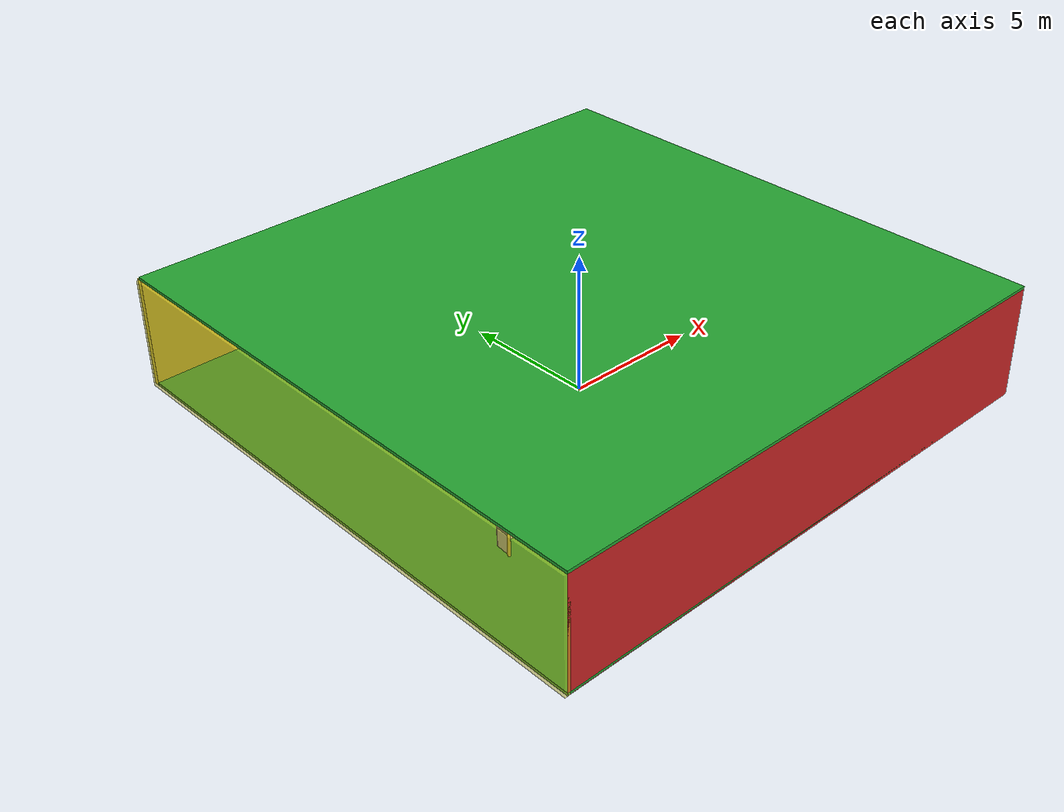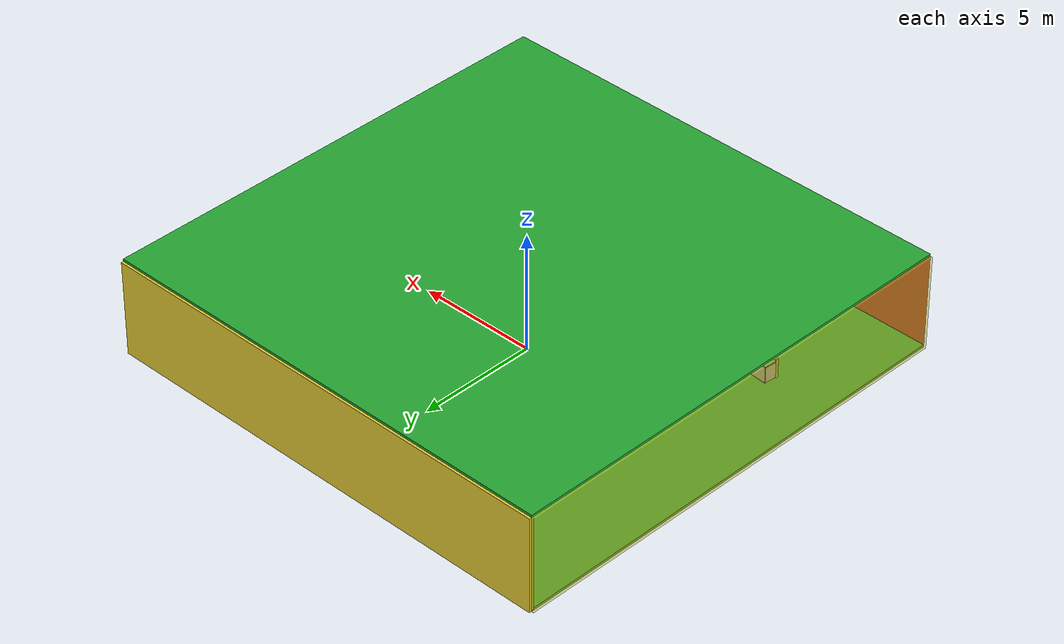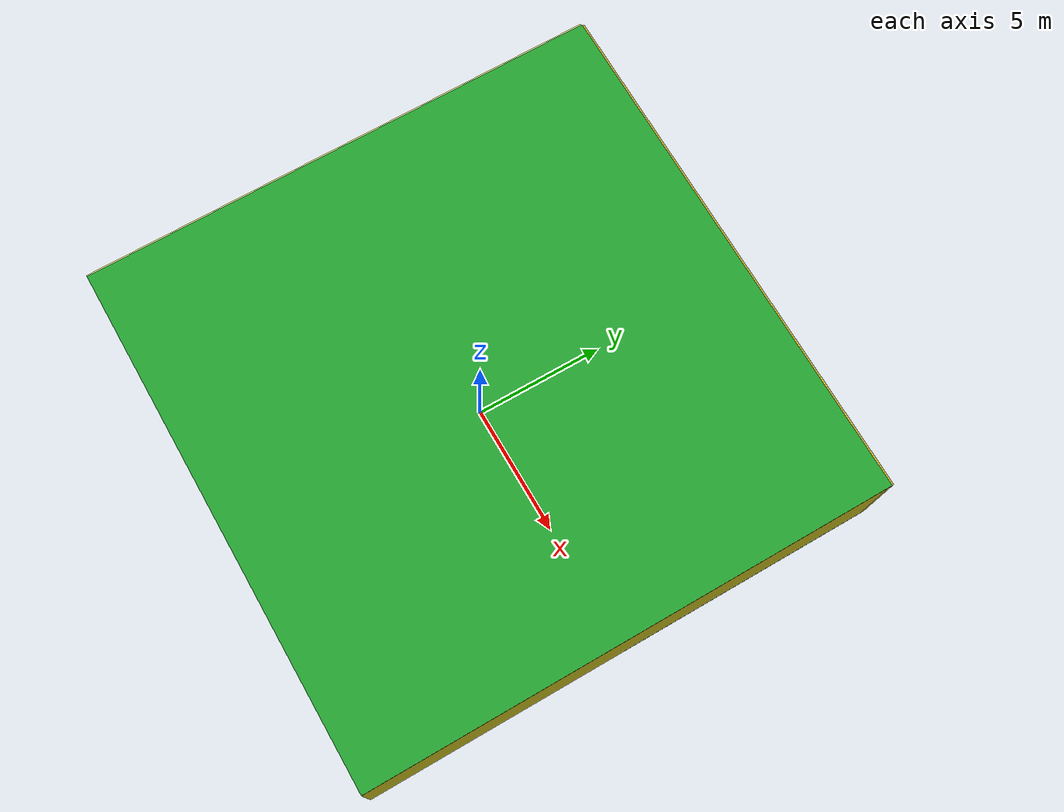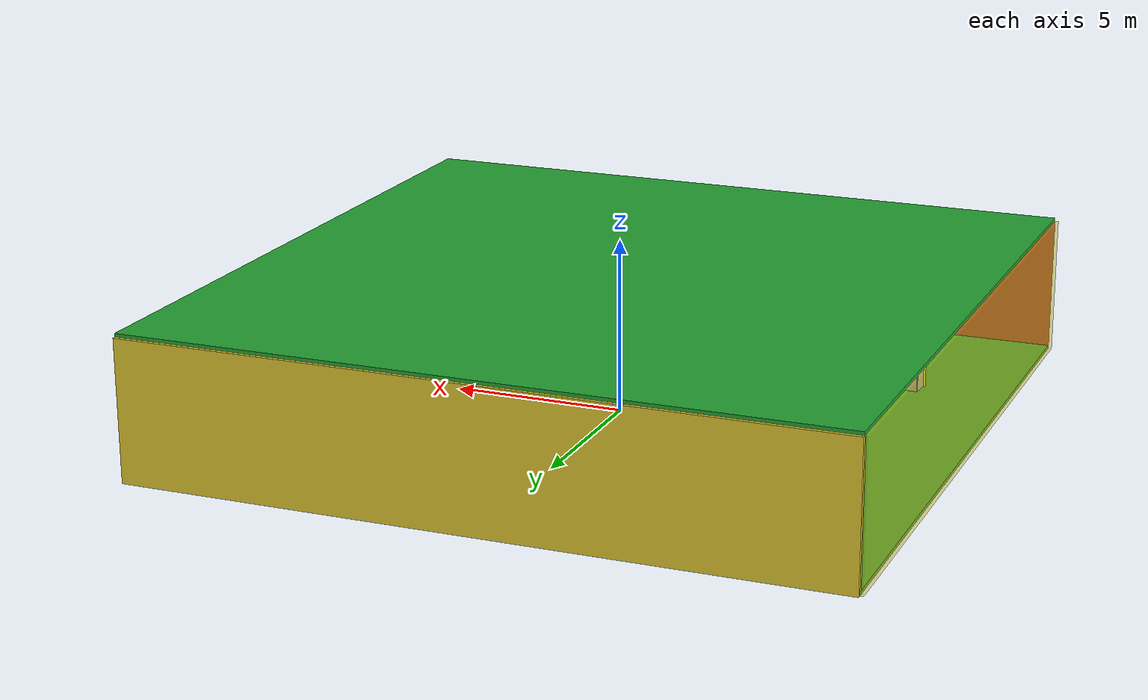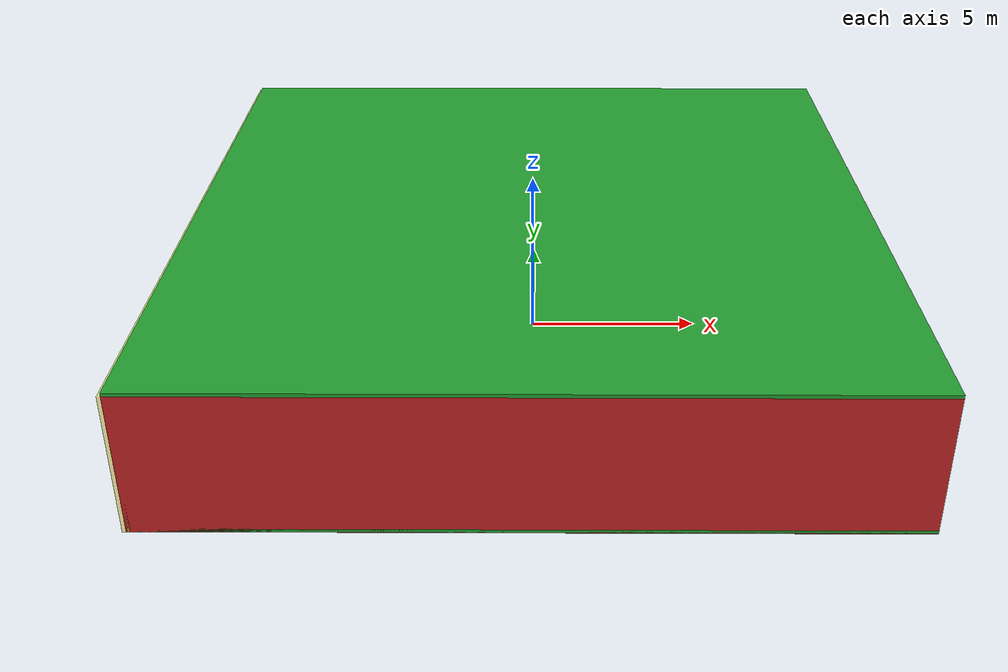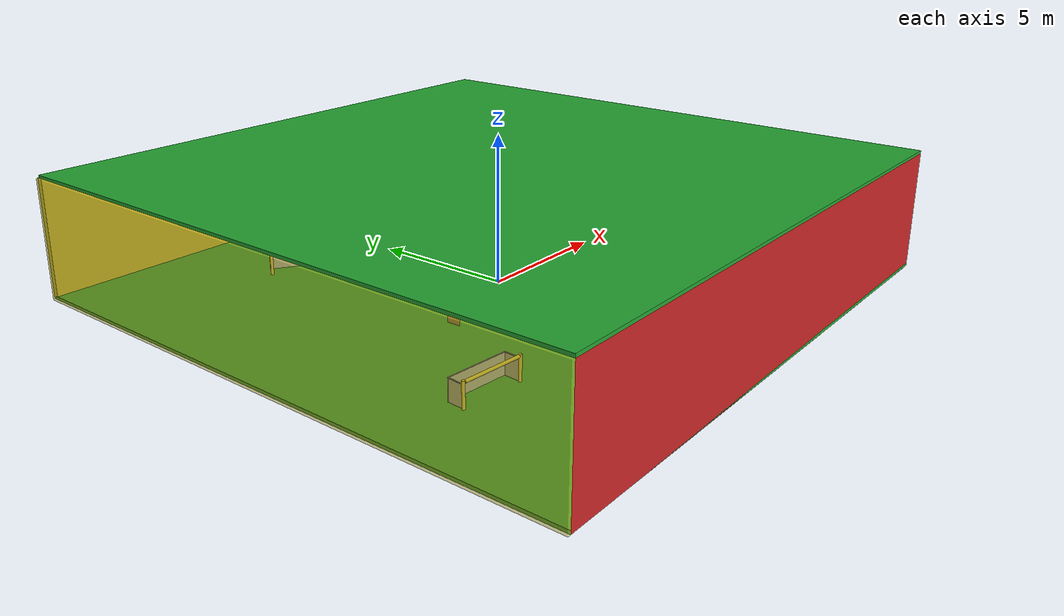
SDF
<sdf version="1.4">
 <world name="default">
  <physics type="ode">
   <max_step_size>0.001</max_step_size>
   <real_time_factor>1</real_time_factor>
   <real_time_update_rate>1000</real_time_update_rate>
   <gravity>0 0 -9.8</gravity>
  </physics>
  <scene><ambient>0.4 0.4 0.4 1</ambient><background>0.7 0.7 0.7 1</background><shadows>1</shadows></scene>
  <model name="Surrounding">
   <static>1</static>
   <link name="Ceiling">
    <collision name="Ceiling_Collision"><geometry><box><size>20 20 0.1</size></box></geometry></collision>
    <visual name="Ceiling_Visual">
     <geometry><box><size>20 20 0.1</size></box></geometry>
     <material>
      <script><uri>file://media/materials/scripts/gazebo.material</uri><name>Gazebo/GreenGlow</name></script>
     </material>
    </visual>
    <pose>0 0 4.05 0 0 0</pose>
   </link>
   <link name="Wall_South">
    <collision name="Wall_South_Collision">
     <geometry><box><size>20 0 4</size></box></geometry>
     <pose>0 0 2 0 -0 0</pose>
    </collision>
    <visual name="Wall_South_Visual">
     <pose>0 0 2 0 -0 0</pose>
     <geometry><box><size>20 0 4</size></box></geometry>
     <material>
      <script><uri>file://media/materials/scripts/gazebo.material</uri><name>Gazebo/Red</name></script>
     </material>
    </visual>
    <velocity_decay><linear>0</linear><angular>0</angular></velocity_decay>
    <pose>0 -10 0 0 -0 0</pose>
   </link>
   <link name="Wall_East">
    <collision name="Wall_21_Collision">
     <geometry><box><size>20 0 4</size></box></geometry>
     <pose>0 0 2 0 -0 0</pose>
    </collision>
    <visual name="Wall_21_Visual">
     <pose>0 0 2 0 -0 0</pose>
     <geometry><box><size>20 0 4</size></box></geometry>
     <material>
      <script><uri>file://media/materials/scripts/gazebo.material</uri><name>Gazebo/YellowGlow</name></script>
     </material>
    </visual>
    <velocity_decay><linear>0</linear><angular>0</angular></velocity_decay>
    <pose>10 0 0 0 -0 1.5708</pose>
   </link>
   <link name="Wall_North">
    <collision name="Wall_22_Collision">
     <geometry><box><size>20 0.2 4</size></box></geometry>
     <pose>0 0 2 0 -0 0</pose>
    </collision>
    <visual name="Wall_22_Visual">
     <pose>0 0 2 0 -0 0</pose>
     <geometry><box><size>20 0.2 4</size></box></geometry>
     <material>
      <script><uri>file://media/materials/scripts/gazebo.material</uri><name>Gazebo/ZincYellow</name></script>
     </material>
    </visual>
    <velocity_decay><linear>0</linear><angular>0</angular></velocity_decay>
    <pose>0 10 0 0 -0 0</pose>
   </link>
   <link name="Wall_West">
    <collision name="Wall_23_Collision">
     <geometry><box><size>20 0.2 4</size></box></geometry>
     <pose>0 0 2 0 -0 0</pose>
    </collision>
    <visual name="Wall_23_Visual">
     <pose>0 0 2 0 -0 0</pose>
     <geometry><box><size>20 0.2 4</size></box></geometry>
     <material>
      <script>
       <uri>file://media/materials/scripts/gazebo.material</uri>
       <name>Gazebo/YellowTransparent</name>
      </script>
     </material>
    </visual>
    <velocity_decay><linear>0</linear><angular>0</angular></velocity_decay>
    <pose>-10 0 0 0 0 -1.5708</pose>
   </link>
   <link name="Ground_link">
    <collision name="collision">
     <pose>0 0 .05 0 -0 0</pose>
     <geometry><box><size>20 20 0.1</size></box></geometry>
    </collision>
    <visual name="visual">
     <pose>0 0 .05 0 -0 0</pose>
     <geometry><box><size>20 20 0.1</size></box></geometry>
     <material>
      <script><uri>file://media/materials/scripts/gazebo.material</uri><name>Gazebo/Green</name></script>
     </material>
    </visual>
   </link>
   <static>1</static>
  </model>
  <spherical_coordinates>
   <surface_model>EARTH_WGS84</surface_model>
   <latitude_deg>0</latitude_deg>
   <longitude_deg>0</longitude_deg>
   <elevation>0</elevation>
   <heading_deg>0</heading_deg>
  </spherical_coordinates>
  <light name="lightball_0" type="diffuse">
   <diffuse>0.8 0.8 0.8 1</diffuse>
   <specular>0.2 0.2 0.2 1</specular>
   <attenuation>
    <range>100</range>
    <constant>0.7</constant>
    <linear>0.01</linear>
    <quadratic>0.001</quadratic>
   </attenuation>
   <direction>-0.5 0.1 -0.9</direction>
   <pose>4.08963539782 8.87623028073 0.771070455928 0 0 0</pose>
  </light>
  <light name="lightball_1" type="diffuse">
   <diffuse>0.8 0.8 0.8 1</diffuse>
   <specular>0.2 0.2 0.2 1</specular>
   <attenuation>
    <range>100</range>
    <constant>0.7</constant>
    <linear>0.01</linear>
    <quadratic>0.001</quadratic>
   </attenuation>
   <direction>-0.5 0.1 -0.9</direction>
   <pose>4.18587056855 0.8547264141 3.57552075556 0 0 0</pose>
  </light>
  <light name="lightball_2" type="diffuse">
   <diffuse>0.8 0.8 0.8 1</diffuse>
   <specular>0.2 0.2 0.2 1</specular>
   <attenuation>
    <range>100</range>
    <constant>0.7</constant>
    <linear>0.01</linear>
    <quadratic>0.001</quadratic>
   </attenuation>
   <direction>-0.5 0.1 -0.9</direction>
   <pose>0.293225976054 0.76150780109 2.48864978396 0 0 0</pose>
  </light>
  <light name="lightball_3" type="diffuse">
   <diffuse>0.8 0.8 0.8 1</diffuse>
   <specular>0.2 0.2 0.2 1</specular>
   <attenuation>
    <range>100</range>
    <constant>0.7</constant>
    <linear>0.01</linear>
    <quadratic>0.001</quadratic>
   </attenuation>
   <direction>-0.5 0.1 -0.9</direction>
   <pose>3.18123867835 -7.43852970476 1.60298492557 0 0 0</pose>
  </light>
  <light name="lightball_4" type="diffuse">
   <diffuse>0.8 0.8 0.8 1</diffuse>
   <specular>0.2 0.2 0.2 1</specular>
   <attenuation>
    <range>100</range>
    <constant>0.7</constant>
    <linear>0.01</linear>
    <quadratic>0.001</quadratic>
   </attenuation>
   <direction>-0.5 0.1 -0.9</direction>
   <pose>-2.15015955297 9.00262656622 1.40060173835 0 0 0</pose>
  </light>
  <light name="lightball_5" type="diffuse">
   <diffuse>0.8 0.8 0.8 1</diffuse>
   <specular>0.2 0.2 0.2 1</specular>
   <attenuation>
    <range>100</range>
    <constant>0.7</constant>
    <linear>0.01</linear>
    <quadratic>0.001</quadratic>
   </attenuation>
   <direction>-0.5 0.1 -0.9</direction>
   <pose>9.55174194703 9.59329228365 2.24829403816 0 0 0</pose>
  </light>
  <light name="lightball_6" type="diffuse">
   <diffuse>0.8 0.8 0.8 1</diffuse>
   <specular>0.2 0.2 0.2 1</specular>
   <attenuation>
    <range>100</range>
    <constant>0.7</constant>
    <linear>0.01</linear>
    <quadratic>0.001</quadratic>
   </attenuation>
   <direction>-0.5 0.1 -0.9</direction>
   <pose>0.0966284446318 -9.92515265178 1.31743471569 0 0 0</pose>
  </light>
  <include>
   <uri>model://robocup_3Dsim_goal</uri>
   <pose>-6.43365268381 -5.01229791059 0 0 0 1.48722747747</pose>
  </include>
  <include><uri>model://cabinet</uri><pose>-3.43501085997 -1.25401851012 0 0 0 1.6068225885</pose></include>
  <include>
   <uri>model://robocup_3Dsim_goal</uri>
   <pose>-3.55663332681 5.55481274752 0 0 0 1.00209712822</pose>
  </include>
  <include>
   <uri>model://textured_shapes</uri>
   <pose>-1.95745763337 0.356549732797 0 0 0 2.91410936928</pose>
  </include>
  <include>
   <uri>model://construction_cone</uri>
   <pose>-2.6837959396 3.50730147871 0 0 0 1.13013254898</pose>
  </include>
  <include>
   <uri>model://textured_shapes</uri>
   <pose>1.39941389568 -2.00328242791 0 0 0 2.29378841053</pose>
  </include>
  <include>
   <uri>model://construction_cone</uri>
   <pose>5.64827095426 -7.97645985522 0 0 0 2.52203530933</pose>
  </include>
  <include><uri>model://cabinet</uri><pose>5.22326222064 -1.2825123755 0 0 0 1.9812586589</pose></include>
  <include><uri>model://table</uri><pose>4.25956261142 1.83344712645 0 0 0 2.02892614048</pose></include>
  <include><uri>model://cabinet</uri><pose>3.37389827032 4.64562625984 0 0 0 2.67625903615</pose></include>
  <include><uri>model://cabinet</uri><pose>7.02552938867 -0.437342333373 0 0 0 1.00435926464</pose></include>
 </world>
</sdf>

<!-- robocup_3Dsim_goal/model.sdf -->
<sdf version="1.5">
  <model name="robocup_3d_goal">
    <static>true</static>
    <link name="left_post">
      <pose>0 1.05 0.45 0 0 0</pose>
      <collision name="collision">
        <geometry>
          <cylinder>
            <radius>0.05</radius>
            <length>0.9</length>
          </cylinder>
        </geometry>
      </collision>
      <visual name="visual">
        <geometry>
          <cylinder>
            <radius>0.05</radius>
            <length>0.9</length>
          </cylinder>
        </geometry>
        <material>
          <script>
            <uri>file://media/materials/scripts/gazebo.material</uri>
            <name>Gazebo/ZincYellow</name>
          </script>
        </material>
      </visual>
    </link>
    <link name="left_support_horiz_lower">
      <pose>0.30 1.05 0.01 0 0 0</pose>
      <collision name="collision">
        <geometry>
          <box>
            <size>0.50 0.02 0.02</size>
          </box>
        </geometry>
      </collision>
      <visual name="visual">
        <geometry>
          <box>
            <size>0.50 0.02 0.02</size>
          </box>
        </geometry>
        <material>
          <script>
            <uri>file://media/materials/scripts/gazebo.material</uri>
            <name>Gazebo/White</name>
          </script>
        </material>
      </visual>
    </link>
    <link name="left_support_horiz_upper">
      <pose>0.30 1.05 0.79 0 0 0</pose>
      <collision name="collision">
        <geometry>
          <box>
            <size>0.50 0.02 0.02</size>
          </box>
        </geometry>
      </collision>
      <visual name="visual">
        <geometry>
          <box>
            <size>0.50 0.02 0.02</size>
          </box>
        </geometry>
        <material>
          <script>
            <uri>file://media/materials/scripts/gazebo.material</uri>
            <name>Gazebo/White</name>
          </script>
        </material>
      </visual>
    </link>
    <link name="left_support_vertical">
      <pose>0.56 1.05 0.4 0 1.5708 0</pose>
      <collision name="collision">
        <geometry>
          <box>
            <size>0.80 0.02 0.02</size>
          </box>
        </geometry>
      </collision>
      <visual name="visual">
        <geometry>
          <box>
            <size>0.80 0.02 0.02</size>
          </box>
        </geometry>
        <material>
          <script>
            <uri>file://media/materials/scripts/gazebo.material</uri>
            <name>Gazebo/White</name>
          </script>
        </material>
      </visual>
    </link>
    <link name="right_support_horiz_lower">
      <pose>0.30 -1.05 0.01 0 0 0</pose>
      <collision name="collision">
        <geometry>
          <box>
            <size>0.50 0.02 0.02</size>
          </box>
        </geometry>
      </collision>
      <visual name="visual">
        <geometry>
          <box>
            <size>0.50 0.02 0.02</size>
          </box>
        </geometry>
        <material>
          <script>
            <uri>file://media/materials/scripts/gazebo.material</uri>
            <name>Gazebo/White</name>
          </script>
        </material>
      </visual>
    </link>
    <link name="right_support_horiz_upper">
      <pose>0.30 -1.05 0.79 0 0 0</pose>
      <collision name="collision">
        <geometry>
          <box>
            <size>0.50 0.02 0.02</size>
          </box>
        </geometry>
      </collision>
      <visual name="visual">
        <geometry>
          <box>
            <size>0.50 0.02 0.02</size>
          </box>
        </geometry>
        <material>
          <script>
            <uri>file://media/materials/scripts/gazebo.material</uri>
            <name>Gazebo/White</name>
          </script>
        </material>
      </visual>
    </link>
    <link name="right_support_vertical">
      <pose>0.56 -1.05 0.4 0 1.5708 0</pose>
      <collision name="collision">
        <geometry>
          <box>
            <size>0.80 0.02 0.02</size>
          </box>
        </geometry>
      </collision>
      <visual name="visual">
        <geometry>
          <box>
            <size>0.80 0.02 0.02</size>
          </box>
        </geometry>
        <material>
          <script>
            <uri>file://media/materials/scripts/gazebo.material</uri>
            <name>Gazebo/White</name>
          </script>
        </material>
      </visual>
    </link>
    <link name="center_support_horiz_lower">
      <pose>0.56 0 0.01 0 1.5708 0</pose>
      <collision name="collision">
        <geometry>
          <box>
            <size>0.02 2.08 0.02</size>
          </box>
        </geometry>
      </collision>
      <visual name="visual">
        <geometry>
          <box>
            <size>0.02 2.08 0.02</size>
          </box>
        </geometry>
        <material>
          <script>
            <uri>file://media/materials/scripts/gazebo.material</uri>
            <name>Gazebo/White</name>
          </script>
        </material>
      </visual>
    </link>
    <link name="center_support_horiz_upper">
      <pose>0.56 0 0.79 0 1.5708 0</pose>
      <collision name="collision">
        <geometry>
          <box>
            <size>0.02 2.08 0.02</size>
          </box>
        </geometry>
      </collision>
      <visual name="visual">
        <geometry>
          <box>
            <size>0.02 2.08 0.02</size>
          </box>
        </geometry>
        <material>
          <script>
            <uri>file://media/materials/scripts/gazebo.material</uri>
            <name>Gazebo/White</name>
          </script>
        </material>
      </visual>
    </link>
    <link name="right_post">
      <pose>0 -1.05 0.45 0 0 0</pose>
      <collision name="collision">
        <geometry>
          <cylinder>
            <radius>0.05</radius>
            <length>0.9</length>
          </cylinder>
        </geometry>
      </collision>
      <visual name="visual">
        <geometry>
          <cylinder>
            <radius>0.05</radius>
            <length>0.9</length>
          </cylinder>
        </geometry>
        <material>
          <script>
            <uri>file://media/materials/scripts/gazebo.material</uri>
            <name>Gazebo/ZincYellow</name>
          </script>
        </material>
      </visual>
    </link>
    <link name="crossbar">
      <pose>0 0 0.85 1.57 1.57 0</pose>
      <collision name="collision">
        <geometry>
          <cylinder>
            <radius>0.05</radius>
            <length>2.0</length>
          </cylinder>
        </geometry>
      </collision>
      <visual name="visual">
        <geometry>
          <cylinder>
            <radius>0.05</radius>
            <length>2.0</length>
          </cylinder>
        </geometry>
        <material>
          <script>
            <uri>file://media/materials/scripts/gazebo.material</uri>
            <name>Gazebo/ZincYellow</name>
          </script>
        </material>
      </visual>
    </link>
    <link name="center_net">
      <pose>0.56 0 0.40 0 0 0</pose>
      <collision name="collision">
        <geometry>
          <box>
            <size>0.01 2.1 0.80</size>
          </box>
        </geometry>
      </collision>
      <visual name="visual">
        <geometry>
          <box>
            <size>0.01 2.1 0.80</size>
          </box>
        </geometry>
        <material>
          <script>
            <uri>model://../model_source/models/robocup09_spl_field/materials/scripts/</uri>
            <uri>model://../model_source/models/robocup09_spl_field/materials/textures/</uri>
            <name>RoboCup/Net</name>
          </script>
        </material>
      </visual>
    </link>
    <link name="left_net">
      <pose>0.30 1.05 0.40 0 0 0</pose>
      <collision name="collision">
        <geometry>
          <box>
            <size>0.50 0.01 0.76</size>
          </box>
        </geometry>
      </collision>
      <visual name="visual">
        <geometry>
          <box>
            <size>0.50 0.01 0.76</size>
          </box>
        </geometry>
        <material>
          <script>
            <uri>model://../model_source/models/robocup09_spl_field/materials/scripts/</uri>
            <uri>model://../model_source/models/robocup09_spl_field/materials/textures/</uri>
            <name>RoboCup/Net</name>
          </script>
        </material>
      </visual>
    </link>
    <link name="right_net">
      <pose>0.30 -1.05 0.40 0 0 0</pose>
      <collision name="collision">
        <geometry>
          <box>
            <size>0.50 0.01 0.76</size>
          </box>
        </geometry>
      </collision>
      <visual name="visual">
        <geometry>
          <box>
            <size>0.50 0.01 0.76</size>
          </box>
        </geometry>
        <material>
          <script>
            <uri>model://../model_source/models/robocup09_spl_field/materials/scripts/</uri>
            <uri>model://../model_source/models/robocup09_spl_field/materials/textures/</uri>
            <name>RoboCup/Net</name>
          </script>
        </material>
      </visual>
    </link>
  </model>
</sdf>

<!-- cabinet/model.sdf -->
<sdf version="1.5">
  <model name="cabinet">
    <static>true</static>
    <link name="cabinet_bottom_plate">
      <inertial>
        <pose>0 0 -1 0 0 0</pose>
        <inertia>
          <ixx>2.050000</ixx>
          <ixy>0</ixy>
          <ixz>0</ixz>
          <iyy>2.050000</iyy>
          <iyz>0</iyz>
          <izz>2.050000</izz>
        </inertia>
        <mass>25.000000</mass>
      </inertial>
      <collision name="cabinet_bottom_plate_geom">
        <pose>0 0 0.010000 0 0 0</pose>
        <geometry>
          <box>
            <size>0.450000 0.450000 0.020000</size>
          </box>
        </geometry>
      </collision>
      <visual name="cabinet_bottom_plate_geom_visual">
        <pose>0 0 0.010000 0 0 0</pose>
        <geometry>
          <box>
            <size>0.450000 0.450000 0.020000</size>
          </box>
        </geometry>
        <material>
          <script>
            <uri>model://media/materials/scripts/gazebo.material</uri>
            <name>Gazebo/Wood</name>
          </script>
        </material>
      </visual>
      <collision name="cabinet_bottom_plate_geom_cabinet_back_plate">
        <pose>0.235000 0 0.510000 0 0 0</pose>
        <geometry>
          <box>
            <size>0.020000 0.450000 1.020000</size>
          </box>
        </geometry>
      </collision>
      <visual name="cabinet_bottom_plate_geom_cabinet_back_plate_visual">
        <pose>0.235000 0 0.510000 0 0 0</pose>
        <geometry>
          <box>
            <size>0.020000 0.450000 1.020000</size>
          </box>
        </geometry>
        <material>
          <script>
            <uri>model://media/materials/scripts/gazebo.material</uri>
            <name>Gazebo/Wood</name>
          </script>
        </material>
      </visual>
      <collision name="cabinet_bottom_plate_geom_cabinet_left_plate">
        <pose>0 0.235000 0.510000 0 0 0</pose>
        <geometry>
          <box>
            <size>0.450000 0.020000 1.020000</size>
          </box>
        </geometry>
      </collision>
      <visual name="cabinet_bottom_plate_geom_cabinet_left_plate_visual">
        <pose>0 0.235000 0.510000 0 0 0</pose>
        <geometry>
          <box>
            <size>0.450000 0.020000 1.020000</size>
          </box>
        </geometry>
        <material>
          <script>
            <uri>model://media/materials/scripts/gazebo.material</uri>
            <name>Gazebo/Wood</name>
          </script>
        </material>
      </visual>
      <collision name="cabinet_bottom_plate_geom_cabinet_middle_plate">
        <pose>0 0 0.510000 0 0 0</pose>
        <geometry>
          <box>
            <size>0.450000 0.450000 0.020000</size>
          </box>
        </geometry>
      </collision>
      <visual name="cabinet_bottom_plate_geom_cabinet_middle_plate_visual">
        <pose>0 0 0.510000 0 0 0</pose>
        <geometry>
          <box>
            <size>0.450000 0.450000 0.020000</size>
          </box>
        </geometry>
        <material>
          <script>
            <uri>model://media/materials/scripts/gazebo.material</uri>
            <name>Gazebo/Wood</name>
          </script>
        </material>
      </visual>
      <collision name="cabinet_bottom_plate_geom_cabinet_right_plate">
        <pose>0 -0.235000 0.510000 0 0 0</pose>
        <geometry>
          <box>
            <size>0.450000 0.020000 1.020000</size>
          </box>
        </geometry>
      </collision>
      <visual name="cabinet_bottom_plate_geom_cabinet_right_plate_visual">
        <pose>0 -0.235000 0.510000 0 0 0</pose>
        <geometry>
          <box>
            <size>0.450000 0.020000 1.020000</size>
          </box>
        </geometry>
        <material>
          <script>
            <uri>model://media/materials/scripts/gazebo.material</uri>
            <name>Gazebo/Wood</name>
          </script>
        </material>
      </visual>
      <collision name="cabinet_bottom_plate_geom_cabinet_top_plate">
        <pose>0 0 1.010000 0 0 0</pose>
        <geometry>
          <box>
            <size>0.450000 0.450000 0.020000</size>
          </box>
        </geometry>
      </collision>
      <visual name="cabinet_bottom_plate_geom_cabinet_top_plate_visual">
        <pose>0 0 1.010000 0 0 0</pose>
        <geometry>
          <box>
            <size>0.450000 0.450000 0.020000</size>
          </box>
        </geometry>
        <material>
          <script>
            <uri>model://media/materials/scripts/gazebo.material</uri>
            <name>Gazebo/Wood</name>
          </script>
        </material>
      </visual>
    </link>
  </model>
</sdf>

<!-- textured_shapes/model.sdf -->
<sdf version="1.6">
  <model name="textured_shapes">
    <pose>0 0 0.5 0 0 0</pose>
    <link name="box">
      <pose>0 -1.5 0 0 0 0</pose>
      <collision name="collision">
        <geometry>
          <box>
            <size>1 1 1</size>
          </box>
        </geometry>
      </collision>
      <visual name="visual">
        <geometry>
          <box>
            <size>1 1 1</size>
          </box>
        </geometry>
        <material>
          <script>
            <uri>model://../model_source/models/textured_shapes/materials/scripts</uri>
            <uri>model://../model_source/models/textured_shapes/materials/textures</uri>
            <name>TexturedShape/Squares</name>
          </script>
        </material>
      </visual>
    </link>
    <link name="sphere">
      <collision name="collision">
        <geometry>
          <sphere>
            <radius>0.5</radius>
          </sphere>
        </geometry>
      </collision>
      <visual name="visual">
        <geometry>
          <sphere>
            <radius>0.5</radius>
          </sphere>
        </geometry>
        <material>
          <script>
            <uri>model://../model_source/models/textured_shapes/materials/scripts</uri>
            <uri>model://../model_source/models/textured_shapes/materials/textures</uri>
            <name>TexturedShape/Squares</name>
          </script>
        </material>
      </visual>
    </link>
    <link name="cylinder">
      <pose>0 1.5 0 0 0 0</pose>
      <collision name="collision">
        <geometry>
          <cylinder>
            <radius>0.5</radius>
            <length>1</length>
          </cylinder>
        </geometry>
      </collision>
      <visual name="visual">
        <geometry>
          <cylinder>
            <radius>0.5</radius>
            <length>1</length>
          </cylinder>
        </geometry>
        <material>
          <script>
            <uri>model://../model_source/models/textured_shapes/materials/scripts</uri>
            <uri>model://../model_source/models/textured_shapes/materials/textures</uri>
            <name>TexturedShape/Squares</name>
          </script>
        </material>
      </visual>
    </link>
  </model>
</sdf>

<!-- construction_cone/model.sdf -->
<sdf version="1.5">
  <model name="Construction Cone">
    <link name="link">
      <collision name="collision">
        <geometry>
          <mesh>
            <scale>10 10 10</scale>
            <uri>file://isr-testbed/construction_cone/meshes/construction_cone.dae</uri>
          </mesh>
        </geometry>
      </collision>
      <visual name="visual">
        <geometry>
          <mesh>
            <scale>10 10 10</scale>
            <uri>file://isr-testbed/construction_cone/meshes/construction_cone.dae</uri>
          </mesh>
        </geometry>
      </visual>
    </link>
  </model>
</sdf>

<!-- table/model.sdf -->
<sdf version="1.5">
  <model name="table">
    <static>true</static>
    <link name="link">
      <collision name="surface">
        <pose>0 0 1.0 0 0 0</pose>
        <geometry>
          <box>
            <size>1.5 0.8 0.03</size>
          </box>
        </geometry>
        <surface>
          <friction>
            <ode>
              <mu>0.6</mu>
              <mu2>0.6</mu2>
            </ode>
          </friction>
        </surface>
      </collision>
      <visual name="visual1">
        <pose>0 0 1.0 0 0 0</pose>
        <geometry>
          <box>
            <size>1.5 0.8 0.03</size>
          </box>
        </geometry>
        <material>
          <script>
            <uri>model://media/materials/scripts/gazebo.material</uri>
            <name>Gazebo/Wood</name>
          </script>
        </material>
      </visual>
      <collision name="front_left_leg">
        <pose>0.68 0.38 0.5 0 0 0</pose>
        <geometry>
          <cylinder>
            <radius>0.02</radius>
            <length>1.0</length>
          </cylinder>
        </geometry>
      </collision>
      <visual name="front_left_leg">
        <pose>0.68 0.38 0.5 0 0 0</pose>
        <geometry>
          <cylinder>
            <radius>0.02</radius>
            <length>1.0</length>
          </cylinder>
        </geometry>
        <material>
          <script>
            <uri>model://media/materials/scripts/gazebo.material</uri>
            <name>Gazebo/Grey</name>
          </script>
        </material>
      </visual>
      <collision name="front_right_leg">
        <pose>0.68 -0.38 0.5 0 0 0</pose>
        <geometry>
          <cylinder>
            <radius>0.02</radius>
            <length>1.0</length>
          </cylinder>
        </geometry>
      </collision>
      <visual name="front_right_leg">
        <pose>0.68 -0.38 0.5 0 0 0</pose>
        <geometry>
          <cylinder>
            <radius>0.02</radius>
            <length>1.0</length>
          </cylinder>
        </geometry>
        <material>
          <script>
            <uri>model://media/materials/scripts/gazebo.material</uri>
            <name>Gazebo/Grey</name>
          </script>
        </material>
      </visual>
      <collision name="back_right_leg">
        <pose>-0.68 -0.38 0.5 0 0 0</pose>
        <geometry>
          <cylinder>
            <radius>0.02</radius>
            <length>1.0</length>
          </cylinder>
        </geometry>
      </collision>
      <visual name="back_right_leg">
        <pose>-0.68 -0.38 0.5 0 0 0</pose>
        <geometry>
          <cylinder>
            <radius>0.02</radius>
            <length>1.0</length>
          </cylinder>
        </geometry>
        <material>
          <script>
            <uri>model://media/materials/scripts/gazebo.material</uri>
            <name>Gazebo/Grey</name>
          </script>
        </material>
      </visual>
      <collision name="back_left_leg">
        <pose>-0.68 0.38 0.5 0 0 0</pose>
        <geometry>
          <cylinder>
            <radius>0.02</radius>
            <length>1.0</length>
          </cylinder>
        </geometry>
      </collision>
      <visual name="back_left_leg">
        <pose>-0.68 0.38 0.5 0 0 0</pose>
        <geometry>
          <cylinder>
            <radius>0.02</radius>
            <length>1.0</length>
          </cylinder>
        </geometry>
        <material>
          <script>
            <uri>model://media/materials/scripts/gazebo.material</uri>
            <name>Gazebo/Grey</name>
          </script>
        </material>
      </visual>
    </link>
  </model>
</sdf>
